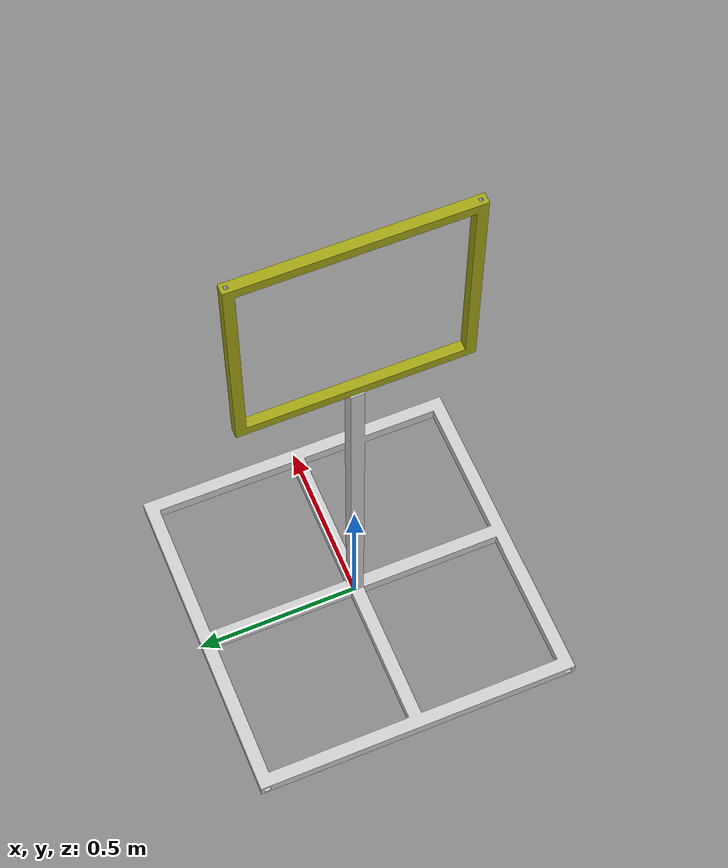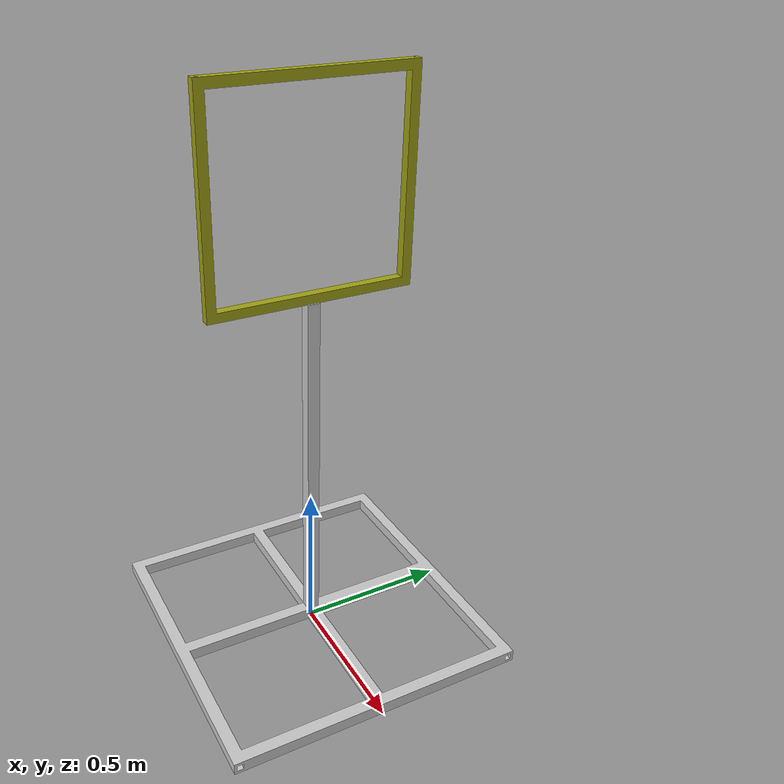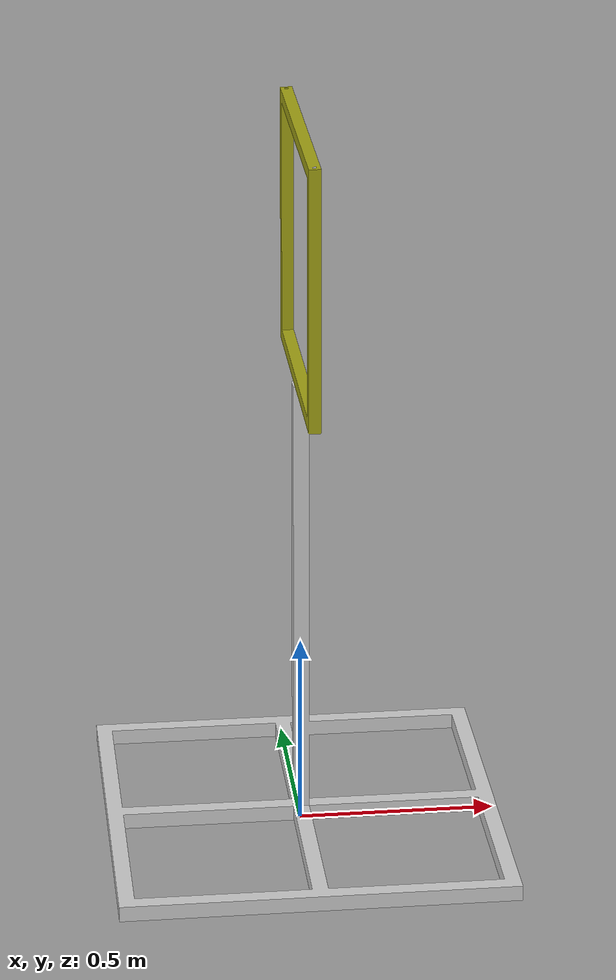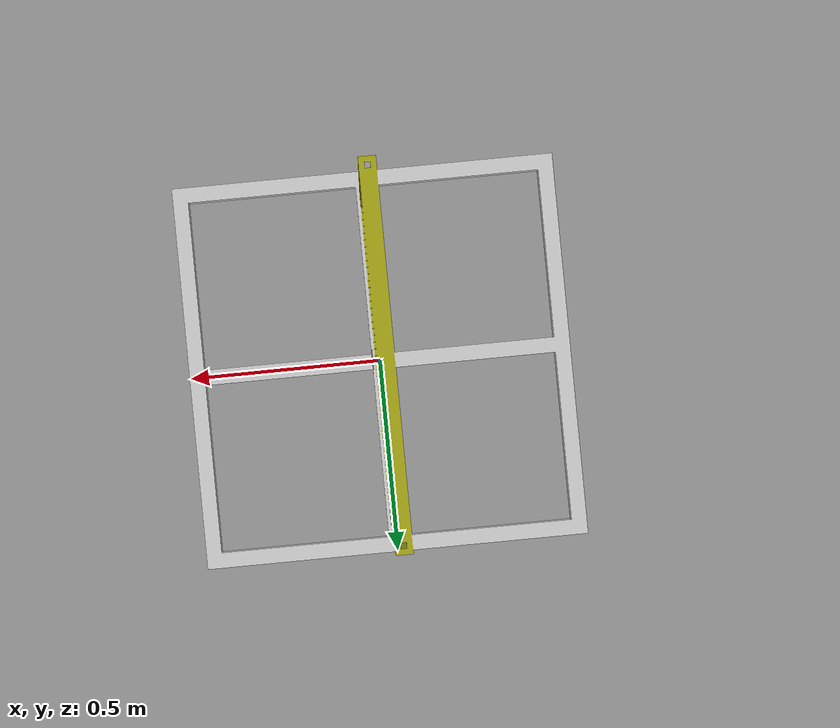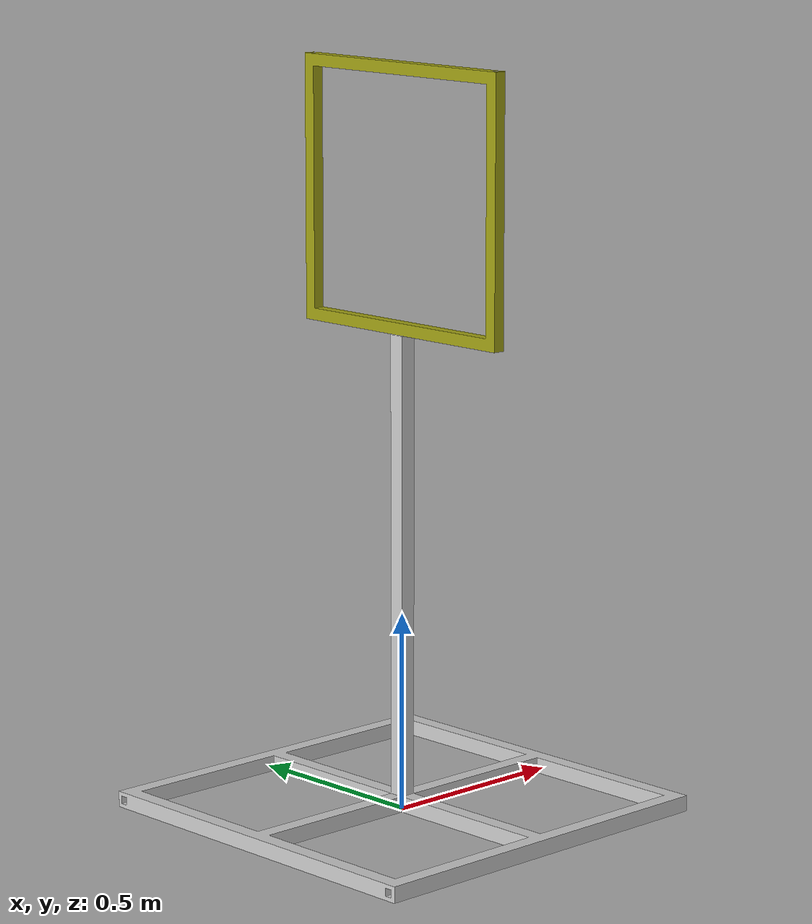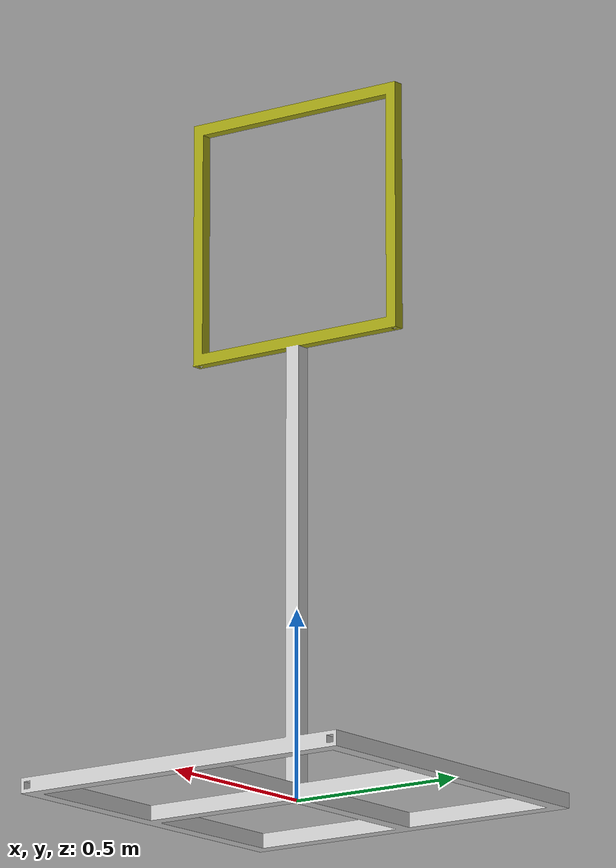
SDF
<?xml version="1.0"?>
<sdf version="1.5">
  <model name='tc6_ring'>
    <link name='tc6_ring'>
      <pose>0 0 0 1.5708 -0 0</pose>
      <inertial>
        <mass>10.176</mass>
        <inertia>
          <ixx>4.83082</ixx>
          <ixy>-2.29503e-18</ixy>
          <ixz>5.55112e-17</ixz>
          <iyy>4.69731</iyy>
          <iyz>-1.62639e-16</iyz>
          <izz>1.70858</izz>
        </inertia>
      </inertial>
      <collision name='tc6_ring_collision'>
        <geometry>
          <mesh>
            <scale>1 1 1</scale>
            <uri>model://tc6_ring/meshes/tc6_ring.dae</uri>
          </mesh>
        </geometry>
      </collision>
      <visual name='tc6_ring_visual'>
        <geometry>
          <mesh>
            <scale>1 1 1</scale>
            <uri>model://tc6_ring/meshes/tc6_ring.dae</uri>
          </mesh>
        </geometry>
      </visual>
    </link>
  </model>
</sdf>
